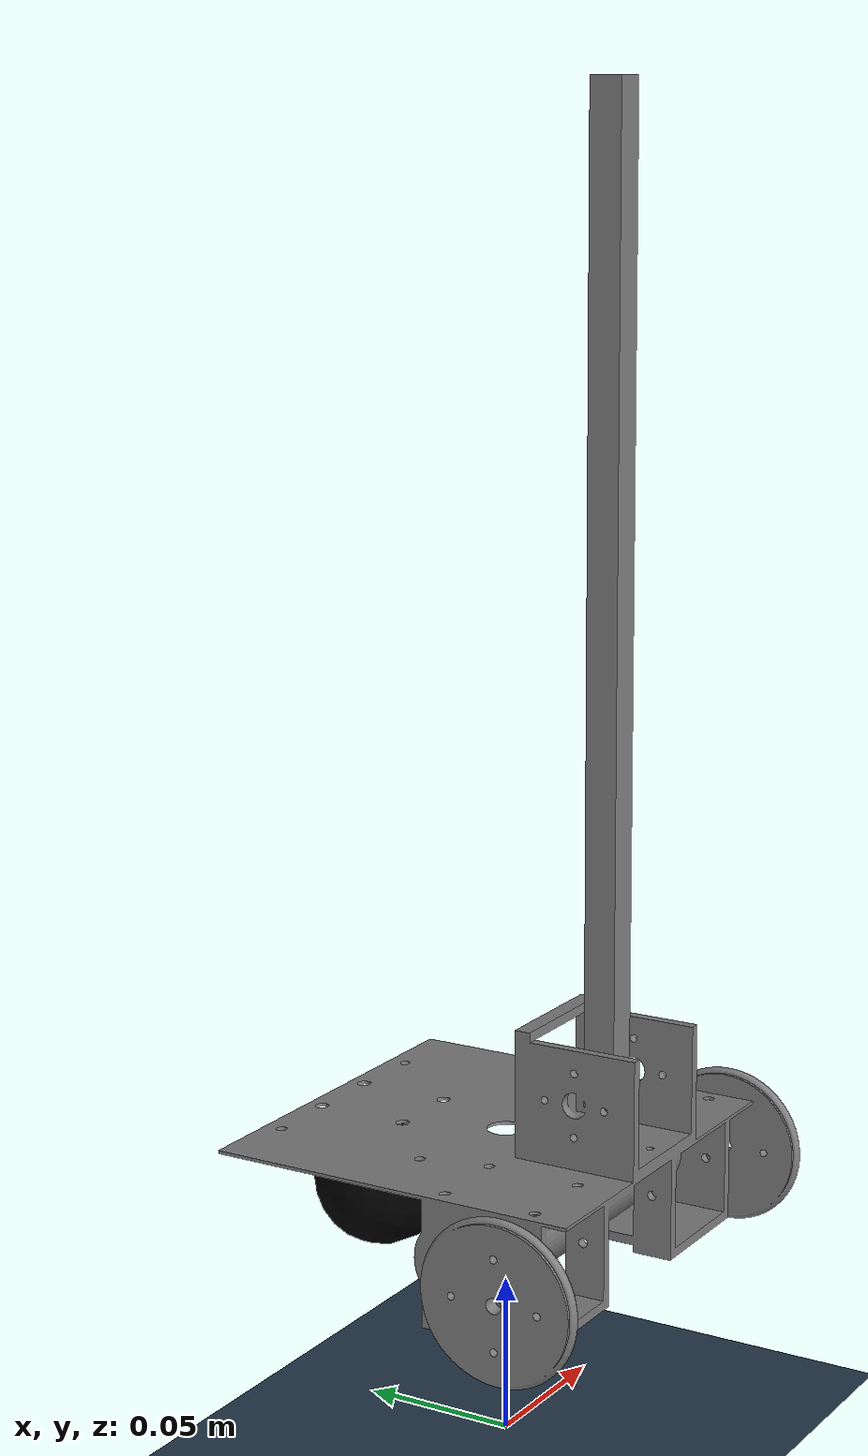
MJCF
<mujoco model="inverted_pendulum">
    <option timestep='0.001' integrator="implicitfast" gravity="0.0 0.0 -9.81"/>

    <asset>
        <texture name="texplane" type="2d" builtin="checker" rgb1=".2 .3 .4" rgb2=".1 0.15 0.2"
                 width="512" height="512" mark="cross" markrgb=".8 .8 .8"/>
        <material name="matplane" reflectance="0." texture="texplane" texrepeat="1 1" texuniform="true"/>

        <mesh name="base" file="stl/base.stl" scale="0.001 0.001 0.001"/>
        <mesh name="wheel" file="stl/wheel.stl" scale="0.001 0.001 0.001"/>
        <mesh name="pipe" file="stl/pipe.stl" scale="0.001 0.001 0.001"/>
    </asset>

    <worldbody>
        <light directional="true" diffuse=".4 .4 .4" specular="0.1 0.1 0.1" pos="0 0 5.0" dir="0 0 -1" castshadow="false"/>
        <light directional="true" diffuse=".6 .6 .6" specular="0.2 0.2 0.2" pos="0 0 4" dir="0 0 -1"/>
        <geom name="ground" type="plane" size="0 0 1" pos="0.001 0 0" quat="1 0 0 0" material="matplane" condim="1" conaffinity='15'/>

        <body pos="0 0 0.1" euler="90 0 0">
            <joint type="free"/>
            <geom type="mesh" mesh="base"/>

            <body pos="0.0702 -0.021 0.040293" euler="0 90 0">
                <joint type="hinge" axis="0 0 1"/>
                <geom type="mesh" mesh="wheel"/>
            </body>

            <body pos="-0.0702 -0.021 0.040293" euler="0 270 0">
                <joint type="hinge" axis="0 0 1"/>
                <geom type="mesh" mesh="wheel"/>
            </body>

            <body pos="0.0 0.014 0.035" euler="0 -90 0">
                <joint type="hinge" axis="0 0 1" pos="0.0 0.006 0.0"/>
                <geom type="mesh" mesh="pipe"/>
            </body>

            <body pos="0.0 -0.024 -0.045" euler="0 -90 0">
                <joint type="ball"/>
                <geom name="ball" size="0.022" rgba="0.0 0.0 0.0 1.0"/>
            </body>
        </body>
    </worldbody>
</mujoco>
